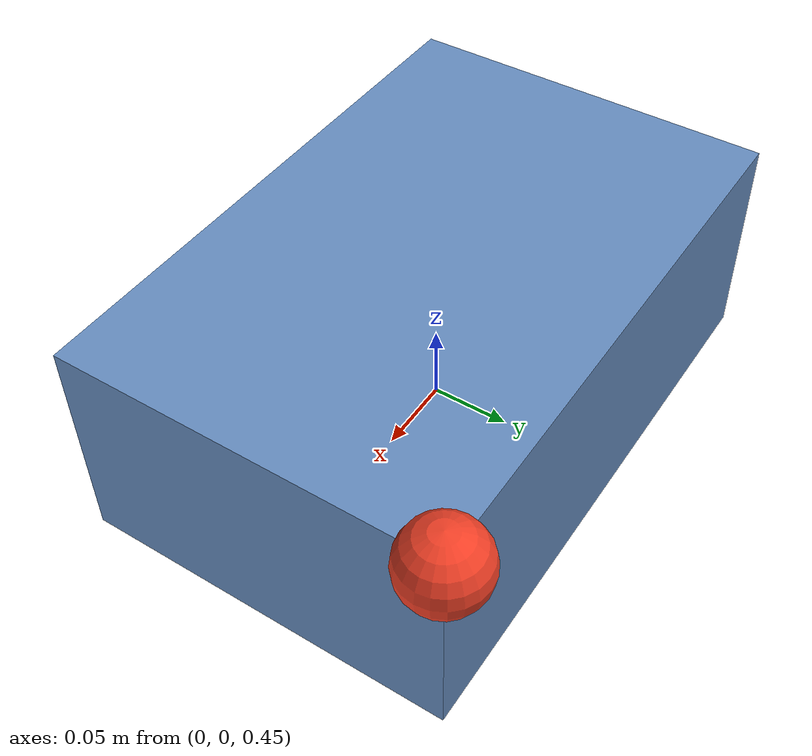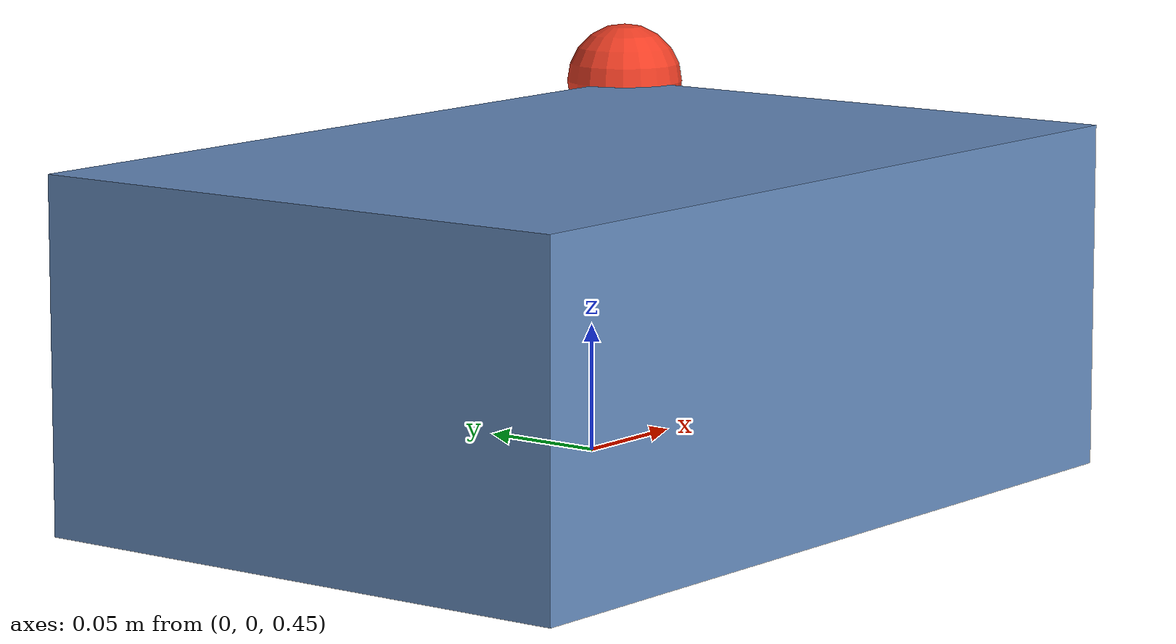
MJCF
<mujoco model="spinning-toss">
  <compiler angle="radian"/>
  <option gravity="0 0 -9.81" timestep="0.001" integrator="RK4">
    <flag energy="enable"/>
  </option>

  <worldbody>
    <body name="brick" pos="0 0 0.5">
      <freejoint name="free"/>
      <inertial pos="0 0 0" mass="1.5" diaginertia="0.06 0.03 0.015"/>
      <geom name="body" type="box" size="0.18 0.12 0.07"
            contype="0" conaffinity="0" rgba="0.40 0.55 0.75 1"/>
      <geom name="marker" type="sphere" size="0.025"
            pos="0.18 0.12 0.07" contype="0" conaffinity="0"
            rgba="0.95 0.25 0.15 1"/>
    </body>
  </worldbody>

  <sensor>
    <subtreeangmom name="angmom" body="brick"/>
  </sensor>

  <keyframe>
    <key name="toss" qpos="0 0 0.5 1 0 0 0"
         qvel="2 0 4 3 1 0.5"/>
  </keyframe>
</mujoco>
